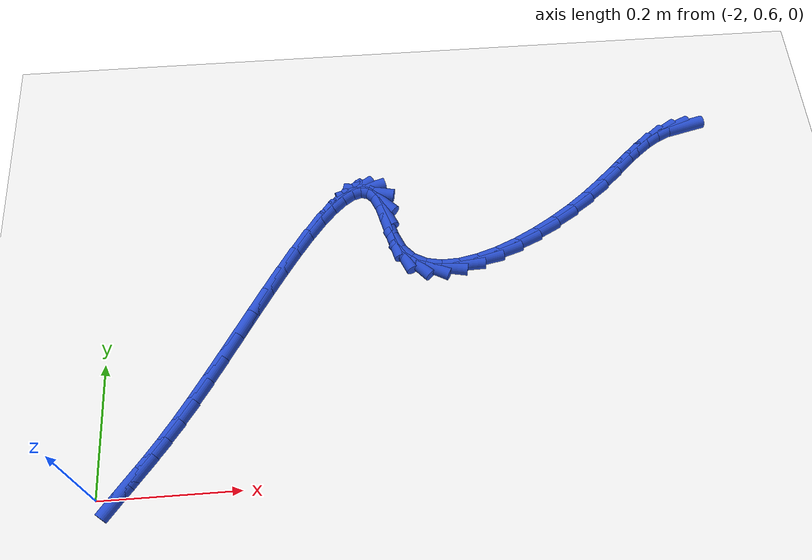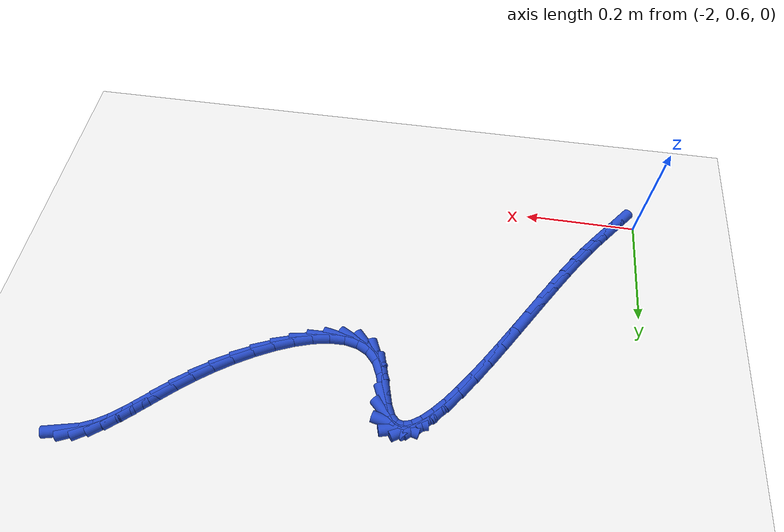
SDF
<sdf version="1.6">
 <world name="default">
  <model name="ground_plane">
   <static>1</static>
   <link name="link">
    <collision name="collision">
     <geometry><plane><normal>0 0 1</normal><size>100 100</size></plane></geometry>
     <surface><friction><ode><mu>100</mu><mu2>50</mu2></ode></friction></surface>
    </collision>
    <visual name="visual">
     <cast_shadows>0</cast_shadows>
     <geometry><plane><normal>0 0 1</normal><size>100 100</size></plane></geometry>
     <material>
      <script><uri>file://media/materials/scripts/gazebo.material</uri><name>Gazebo/WhiteGlow</name></script>
     </material>
    </visual>
   </link>
  </model>
  <model name="line">
   <link name="link_62">
    <pose>-1.091655040547691 1.1519525943507345 0.01 0 1.57 0.2382042147833684</pose>
    <collision name="collision">
     <geometry><cylinder><radius>0.01</radius><length>0.08</length></cylinder></geometry>
    </collision>
    <visual name="visual">
     <material>
      <script><name>Gazebo/Blue</name><uri>file://media/materials/scripts/gazebo.material</uri></script>
     </material>
     <geometry><cylinder><radius>0.01</radius><length>0.08</length></cylinder></geometry>
    </visual>
   </link>
   <link name="link_63">
    <pose>-1.112786473026925 1.1468215822956151 0.01 0 1.57 0.42569937189154256</pose>
    <collision name="collision">
     <geometry><cylinder><radius>0.01</radius><length>0.08</length></cylinder></geometry>
    </collision>
    <visual name="visual">
     <material>
      <script><name>Gazebo/Blue</name><uri>file://media/materials/scripts/gazebo.material</uri></script>
     </material>
     <geometry><cylinder><radius>0.01</radius><length>0.08</length></cylinder></geometry>
    </visual>
   </link>
   <link name="link_64">
    <pose>-1.133051928414438 1.1376326970161832 0.01 0 1.57 0.5736222615817751</pose>
    <collision name="collision">
     <geometry><cylinder><radius>0.01</radius><length>0.08</length></cylinder></geometry>
    </collision>
    <visual name="visual">
     <material>
      <script><name>Gazebo/Blue</name><uri>file://media/materials/scripts/gazebo.material</uri></script>
     </material>
     <geometry><cylinder><radius>0.01</radius><length>0.08</length></cylinder></geometry>
    </visual>
   </link>
   <link name="link_65">
    <pose>-1.152851858330945 1.1248401424573473 0.01 0 1.57 0.67112102603823</pose>
    <collision name="collision">
     <geometry><cylinder><radius>0.01</radius><length>0.08</length></cylinder></geometry>
    </collision>
    <visual name="visual">
     <material>
      <script><name>Gazebo/Blue</name><uri>file://media/materials/scripts/gazebo.material</uri></script>
     </material>
     <geometry><cylinder><radius>0.01</radius><length>0.08</length></cylinder></geometry>
    </visual>
   </link>
   <link name="link_66">
    <pose>-1.172694410885196 1.10908355931243 0.01 0 1.57 0.7253688649471478</pose>
    <collision name="collision">
     <geometry><cylinder><radius>0.01</radius><length>0.08</length></cylinder></geometry>
    </collision>
    <visual name="visual">
     <material>
      <script><name>Gazebo/Blue</name><uri>file://media/materials/scripts/gazebo.material</uri></script>
     </material>
     <geometry><cylinder><radius>0.01</radius><length>0.08</length></cylinder></geometry>
    </visual>
   </link>
   <link name="link_67">
    <pose>-1.1930877381090412 1.0910025950297237 0.01 0 1.57 0.7445029814929888</pose>
    <collision name="collision">
     <geometry><cylinder><radius>0.01</radius><length>0.08</length></cylinder></geometry>
    </collision>
    <visual name="visual">
     <material>
      <script><name>Gazebo/Blue</name><uri>file://media/materials/scripts/gazebo.material</uri></script>
     </material>
     <geometry><cylinder><radius>0.01</radius><length>0.08</length></cylinder></geometry>
    </visual>
   </link>
   <link name="link_68">
    <pose>-1.2145399920343296 1.0712368970575228 0.01 0 1.57 0.7350519117442823</pose>
    <collision name="collision">
     <geometry><cylinder><radius>0.01</radius><length>0.08</length></cylinder></geometry>
    </collision>
    <visual name="visual">
     <material>
      <script><name>Gazebo/Blue</name><uri>file://media/materials/scripts/gazebo.material</uri></script>
     </material>
     <geometry><cylinder><radius>0.01</radius><length>0.08</length></cylinder></geometry>
    </visual>
   </link>
   <link name="link_69">
    <pose>-1.2375593246929113 1.0504261128441206 0.01 0 1.57 0.7018471827969643</pose>
    <collision name="collision">
     <geometry><cylinder><radius>0.01</radius><length>0.08</length></cylinder></geometry>
    </collision>
    <visual name="visual">
     <material>
      <script><name>Gazebo/Blue</name><uri>file://media/materials/scripts/gazebo.material</uri></script>
     </material>
     <geometry><cylinder><radius>0.01</radius><length>0.08</length></cylinder></geometry>
    </visual>
   </link>
   <link name="link_70">
    <pose>-1.2626538881166365 1.0292098898378104 0.01 0 1.57 0.6507447884981931</pose>
    <collision name="collision">
     <geometry><cylinder><radius>0.01</radius><length>0.08</length></cylinder></geometry>
    </collision>
    <visual name="visual">
     <material>
      <script><name>Gazebo/Blue</name><uri>file://media/materials/scripts/gazebo.material</uri></script>
     </material>
     <geometry><cylinder><radius>0.01</radius><length>0.08</length></cylinder></geometry>
    </visual>
   </link>
   <link name="link_71">
    <pose>-1.2902090221353073 1.0082299543242181 0.01 0 1.57 0.5960978263858033</pose>
    <collision name="collision">
     <geometry><cylinder><radius>0.01</radius><length>0.08</length></cylinder></geometry>
    </collision>
    <visual name="visual">
     <material>
      <script><name>Gazebo/Blue</name><uri>file://media/materials/scripts/gazebo.material</uri></script>
     </material>
     <geometry><cylinder><radius>0.01</radius><length>0.08</length></cylinder></geometry>
    </visual>
   </link>
   <link name="link_72">
    <pose>-1.3198196460807194 0.9881414120057719 0.01 0 1.57 0.5396582795383098</pose>
    <collision name="collision">
     <geometry><cylinder><radius>0.01</radius><length>0.08</length></cylinder></geometry>
    </collision>
    <visual name="visual">
     <material>
      <script><name>Gazebo/Blue</name><uri>file://media/materials/scripts/gazebo.material</uri></script>
     </material>
     <geometry><cylinder><radius>0.01</radius><length>0.08</length></cylinder></geometry>
    </visual>
   </link>
   <link name="link_73">
    <pose>-1.3507675933902694 0.9696046681775674 0.01 0 1.57 0.4772733635991667</pose>
    <collision name="collision">
     <geometry><cylinder><radius>0.01</radius><length>0.08</length></cylinder></geometry>
    </collision>
    <visual name="visual">
     <material>
      <script><name>Gazebo/Blue</name><uri>file://media/materials/scripts/gazebo.material</uri></script>
     </material>
     <geometry><cylinder><radius>0.01</radius><length>0.08</length></cylinder></geometry>
    </visual>
   </link>
   <link name="link_74">
    <pose>-1.382333916084575 0.9532801413617124 0.01 0 1.57 0.40399387006309345</pose>
    <collision name="collision">
     <geometry><cylinder><radius>0.01</radius><length>0.08</length></cylinder></geometry>
    </collision>
    <visual name="visual">
     <material>
      <script><name>Gazebo/Blue</name><uri>file://media/materials/scripts/gazebo.material</uri></script>
     </material>
     <geometry><cylinder><radius>0.01</radius><length>0.08</length></cylinder></geometry>
    </visual>
   </link>
   <link name="link_75">
    <pose>-1.4137996661842538 0.9398282500803137 0.01 0 1.57 0.31301585151605144</pose>
    <collision name="collision">
     <geometry><cylinder><radius>0.01</radius><length>0.08</length></cylinder></geometry>
    </collision>
    <visual name="visual">
     <material>
      <script><name>Gazebo/Blue</name><uri>file://media/materials/scripts/gazebo.material</uri></script>
     </material>
     <geometry><cylinder><radius>0.01</radius><length>0.08</length></cylinder></geometry>
    </visual>
   </link>
   <link name="link_76">
    <pose>-1.444445895709923 0.9299094128554787 0.01 0 1.57 0.19421611476089998</pose>
    <collision name="collision">
     <geometry><cylinder><radius>0.01</radius><length>0.08</length></cylinder></geometry>
    </collision>
    <visual name="visual">
     <material>
      <script><name>Gazebo/Blue</name><uri>file://media/materials/scripts/gazebo.material</uri></script>
     </material>
     <geometry><cylinder><radius>0.01</radius><length>0.08</length></cylinder></geometry>
    </visual>
   </link>
   <link name="link_77">
    <pose>-1.4735536566822014 0.924184048209315 0.01 0 1.57 0.03244530908625887</pose>
    <collision name="collision">
     <geometry><cylinder><radius>0.01</radius><length>0.08</length></cylinder></geometry>
    </collision>
    <visual name="visual">
     <material>
      <script><name>Gazebo/Blue</name><uri>file://media/materials/scripts/gazebo.material</uri></script>
     </material>
     <geometry><cylinder><radius>0.01</radius><length>0.08</length></cylinder></geometry>
    </visual>
   </link>
   <link name="link_78">
    <pose>-1.5004040011217061 0.9233125746639298 0.01 0 1.57 -0.1920751924655233</pose>
    <collision name="collision">
     <geometry><cylinder><radius>0.01</radius><length>0.08</length></cylinder></geometry>
    </collision>
    <visual name="visual">
     <material>
      <script><name>Gazebo/Blue</name><uri>file://media/materials/scripts/gazebo.material</uri></script>
     </material>
     <geometry><cylinder><radius>0.01</radius><length>0.08</length></cylinder></geometry>
    </visual>
   </link>
   <link name="link_79">
    <pose>-1.5242779810490537 0.9279554107414298 0.01 0 1.57 -0.4921003853158791</pose>
    <collision name="collision">
     <geometry><cylinder><radius>0.01</radius><length>0.08</length></cylinder></geometry>
    </collision>
    <visual name="visual">
     <material>
      <script><name>Gazebo/Blue</name><uri>file://media/materials/scripts/gazebo.material</uri></script>
     </material>
     <geometry><cylinder><radius>0.01</radius><length>0.08</length></cylinder></geometry>
    </visual>
   </link>
   <link name="link_80">
    <pose>-1.5444566484848639 0.9387729749639231 0.01 0 1.57 -0.8418452201998652</pose>
    <collision name="collision">
     <geometry><cylinder><radius>0.01</radius><length>0.08</length></cylinder></geometry>
    </collision>
    <visual name="visual">
     <material>
      <script><name>Gazebo/Blue</name><uri>file://media/materials/scripts/gazebo.material</uri></script>
     </material>
     <geometry><cylinder><radius>0.01</radius><length>0.08</length></cylinder></geometry>
    </visual>
   </link>
   <link name="link_81">
    <pose>-1.560221055449753 0.9564256858535163 0.01 0 1.57 -1.1553070775471048</pose>
    <collision name="collision">
     <geometry><cylinder><radius>0.01</radius><length>0.08</length></cylinder></geometry>
    </collision>
    <visual name="visual">
     <material>
      <script><name>Gazebo/Blue</name><uri>file://media/materials/scripts/gazebo.material</uri></script>
     </material>
     <geometry><cylinder><radius>0.01</radius><length>0.08</length></cylinder></geometry>
    </visual>
   </link>
   <link name="link_82">
    <pose>-1.5711044463587647 0.9810948954071318 0.01 0 1.57 -1.3072496696569134</pose>
    <collision name="collision">
     <geometry><cylinder><radius>0.01</radius><length>0.08</length></cylinder></geometry>
    </collision>
    <visual name="visual">
     <material>
      <script><name>Gazebo/Blue</name><uri>file://media/materials/scripts/gazebo.material</uri></script>
     </material>
     <geometry><cylinder><radius>0.01</radius><length>0.08</length></cylinder></geometry>
    </visual>
   </link>
   <link name="link_83">
    <pose>-1.5786650068933479 1.0091153623157632 0.01 0 1.57 -1.3146788064199935</pose>
    <collision name="collision">
     <geometry><cylinder><radius>0.01</radius><length>0.08</length></cylinder></geometry>
    </collision>
    <visual name="visual">
     <material>
      <script><name>Gazebo/Blue</name><uri>file://media/materials/scripts/gazebo.material</uri></script>
     </material>
     <geometry><cylinder><radius>0.01</radius><length>0.08</length></cylinder></geometry>
    </visual>
   </link>
   <link name="link_84">
    <pose>-1.5854356089643353 1.0349703241485189 0.01 0 1.57 -1.152651219568261</pose>
    <collision name="collision">
     <geometry><cylinder><radius>0.01</radius><length>0.08</length></cylinder></geometry>
    </collision>
    <visual name="visual">
     <material>
      <script><name>Gazebo/Blue</name><uri>file://media/materials/scripts/gazebo.material</uri></script>
     </material>
     <geometry><cylinder><radius>0.01</radius><length>0.08</length></cylinder></geometry>
    </visual>
   </link>
   <link name="link_85">
    <pose>-1.5937321485998968 1.053641523746734 0.01 0 1.57 -0.7826806792465566</pose>
    <collision name="collision">
     <geometry><cylinder><radius>0.01</radius><length>0.08</length></cylinder></geometry>
    </collision>
    <visual name="visual">
     <material>
      <script><name>Gazebo/Blue</name><uri>file://media/materials/scripts/gazebo.material</uri></script>
     </material>
     <geometry><cylinder><radius>0.01</radius><length>0.08</length></cylinder></geometry>
    </visual>
   </link>
   <link name="link_86">
    <pose>-1.6041626796745418 1.0640155187124298 0.01 0 1.57 -0.2198231574765068</pose>
    <collision name="collision">
     <geometry><cylinder><radius>0.01</radius><length>0.08</length></cylinder></geometry>
    </collision>
    <visual name="visual">
     <material>
      <script><name>Gazebo/Blue</name><uri>file://media/materials/scripts/gazebo.material</uri></script>
     </material>
     <geometry><cylinder><radius>0.01</radius><length>0.08</length></cylinder></geometry>
    </visual>
   </link>
   <link name="link_87">
    <pose>-1.616546419726501 1.0667824641071961 0.01 0 1.57 0.2846137360050017</pose>
    <collision name="collision">
     <geometry><cylinder><radius>0.01</radius><length>0.08</length></cylinder></geometry>
    </collision>
    <visual name="visual">
     <material>
      <script><name>Gazebo/Blue</name><uri>file://media/materials/scripts/gazebo.material</uri></script>
     </material>
     <geometry><cylinder><radius>0.01</radius><length>0.08</length></cylinder></geometry>
    </visual>
   </link>
   <link name="link_88">
    <pose>-1.630698336031319 1.0626422328043257 0.01 0 1.57 0.5817064759593974</pose>
    <collision name="collision">
     <geometry><cylinder><radius>0.01</radius><length>0.08</length></cylinder></geometry>
    </collision>
    <visual name="visual">
     <material>
      <script><name>Gazebo/Blue</name><uri>file://media/materials/scripts/gazebo.material</uri></script>
     </material>
     <geometry><cylinder><radius>0.01</radius><length>0.08</length></cylinder></geometry>
    </visual>
   </link>
   <link name="link_89">
    <pose>-1.6464333958645387 1.052294697677112 0.01 0 1.57 0.7466701363084801</pose>
    <collision name="collision">
     <geometry><cylinder><radius>0.01</radius><length>0.08</length></cylinder></geometry>
    </collision>
    <visual name="visual">
     <material>
      <script><name>Gazebo/Blue</name><uri>file://media/materials/scripts/gazebo.material</uri></script>
     </material>
     <geometry><cylinder><radius>0.01</radius><length>0.08</length></cylinder></geometry>
    </visual>
   </link>
   <link name="link_90">
    <pose>-1.6635665665017052 1.0364397315988476 0.01 0 1.57 0.8447068466392204</pose>
    <collision name="collision">
     <geometry><cylinder><radius>0.01</radius><length>0.08</length></cylinder></geometry>
    </collision>
    <visual name="visual">
     <material>
      <script><name>Gazebo/Blue</name><uri>file://media/materials/scripts/gazebo.material</uri></script>
     </material>
     <geometry><cylinder><radius>0.01</radius><length>0.08</length></cylinder></geometry>
    </visual>
   </link>
   <link name="link_91">
    <pose>-1.681912815218364 1.015777207442826 0.01 0 1.57 0.9070278102720732</pose>
    <collision name="collision">
     <geometry><cylinder><radius>0.01</radius><length>0.08</length></cylinder></geometry>
    </collision>
    <visual name="visual">
     <material>
      <script><name>Gazebo/Blue</name><uri>file://media/materials/scripts/gazebo.material</uri></script>
     </material>
     <geometry><cylinder><radius>0.01</radius><length>0.08</length></cylinder></geometry>
    </visual>
   </link>
   <link name="link_92">
    <pose>-1.701287109290058 0.9910069980823405 0.01 0 1.57 0.9484316266652317</pose>
    <collision name="collision">
     <geometry><cylinder><radius>0.01</radius><length>0.08</length></cylinder></geometry>
    </collision>
    <visual name="visual">
     <material>
      <script><name>Gazebo/Blue</name><uri>file://media/materials/scripts/gazebo.material</uri></script>
     </material>
     <geometry><cylinder><radius>0.01</radius><length>0.08</length></cylinder></geometry>
    </visual>
   </link>
   <link name="link_93">
    <pose>-1.7215044159923327 0.9628289763906842 0.01 0 1.57 0.9764405066565025</pose>
    <collision name="collision">
     <geometry><cylinder><radius>0.01</radius><length>0.08</length></cylinder></geometry>
    </collision>
    <visual name="visual">
     <material>
      <script><name>Gazebo/Blue</name><uri>file://media/materials/scripts/gazebo.material</uri></script>
     </material>
     <geometry><cylinder><radius>0.01</radius><length>0.08</length></cylinder></geometry>
    </visual>
   </link>
   <link name="link_94">
    <pose>-1.742379702600732 0.9319430152411493 0.01 0 1.57 0.9951242057274474</pose>
    <collision name="collision">
     <geometry><cylinder><radius>0.01</radius><length>0.08</length></cylinder></geometry>
    </collision>
    <visual name="visual">
     <material>
      <script><name>Gazebo/Blue</name><uri>file://media/materials/scripts/gazebo.material</uri></script>
     </material>
     <geometry><cylinder><radius>0.01</radius><length>0.08</length></cylinder></geometry>
    </visual>
   </link>
   <link name="link_95">
    <pose>-1.7637279363908003 0.8990489875070302 0.01 0 1.57 1.0067541976084156</pose>
    <collision name="collision">
     <geometry><cylinder><radius>0.01</radius><length>0.08</length></cylinder></geometry>
    </collision>
    <visual name="visual">
     <material>
      <script><name>Gazebo/Blue</name><uri>file://media/materials/scripts/gazebo.material</uri></script>
     </material>
     <geometry><cylinder><radius>0.01</radius><length>0.08</length></cylinder></geometry>
    </visual>
   </link>
   <link name="link_96">
    <pose>-1.785364084638082 0.8648467660616197 0.01 0 1.57 1.0125598188180935</pose>
    <collision name="collision">
     <geometry><cylinder><radius>0.01</radius><length>0.08</length></cylinder></geometry>
    </collision>
    <visual name="visual">
     <material>
      <script><name>Gazebo/Blue</name><uri>file://media/materials/scripts/gazebo.material</uri></script>
     </material>
     <geometry><cylinder><radius>0.01</radius><length>0.08</length></cylinder></geometry>
    </visual>
   </link>
   <link name="link_97">
    <pose>-1.8071031146181216 0.8300362237782107 0.01 0 1.57 1.0130775484140084</pose>
    <collision name="collision">
     <geometry><cylinder><radius>0.01</radius><length>0.08</length></cylinder></geometry>
    </collision>
    <visual name="visual">
     <material>
      <script><name>Gazebo/Blue</name><uri>file://media/materials/scripts/gazebo.material</uri></script>
     </material>
     <geometry><cylinder><radius>0.01</radius><length>0.08</length></cylinder></geometry>
    </visual>
   </link>
   <link name="link_98">
    <pose>-1.8287599936064631 0.7953172335300962 0.01 0 1.57 1.008286204964595</pose>
    <collision name="collision">
     <geometry><cylinder><radius>0.01</radius><length>0.08</length></cylinder></geometry>
    </collision>
    <visual name="visual">
     <material>
      <script><name>Gazebo/Blue</name><uri>file://media/materials/scripts/gazebo.material</uri></script>
     </material>
     <geometry><cylinder><radius>0.01</radius><length>0.08</length></cylinder></geometry>
    </visual>
   </link>
   <link name="link_99">
    <pose>-1.8501496888786517 0.7613896681905689 0.01 0 1.57 0.9975939283470145</pose>
    <collision name="collision">
     <geometry><cylinder><radius>0.01</radius><length>0.08</length></cylinder></geometry>
    </collision>
    <visual name="visual">
     <material>
      <script><name>Gazebo/Blue</name><uri>file://media/materials/scripts/gazebo.material</uri></script>
     </material>
     <geometry><cylinder><radius>0.01</radius><length>0.08</length></cylinder></geometry>
    </visual>
   </link>
   <link name="link_100">
    <pose>-1.8710871677102314 0.728953400632923 0.01 0 1.57 0.9796681930107063</pose>
    <collision name="collision">
     <geometry><cylinder><radius>0.01</radius><length>0.08</length></cylinder></geometry>
    </collision>
    <visual name="visual">
     <material>
      <script><name>Gazebo/Blue</name><uri>file://media/materials/scripts/gazebo.material</uri></script>
     </material>
     <geometry><cylinder><radius>0.01</radius><length>0.08</length></cylinder></geometry>
    </visual>
   </link>
   <link name="link_101">
    <pose>-1.8913873973767468 0.6987083037304513 0.01 0 1.57 0.9526118303079983</pose>
    <collision name="collision">
     <geometry><cylinder><radius>0.01</radius><length>0.08</length></cylinder></geometry>
    </collision>
    <visual name="visual">
     <material>
      <script><name>Gazebo/Blue</name><uri>file://media/materials/scripts/gazebo.material</uri></script>
     </material>
     <geometry><cylinder><radius>0.01</radius><length>0.08</length></cylinder></geometry>
    </visual>
   </link>
   <link name="link_102">
    <pose>-1.910872111235378 0.671310261090779 0.01 0 1.57 0.9236446145849297</pose>
    <collision name="collision">
     <geometry><cylinder><radius>0.01</radius><length>0.08</length></cylinder></geometry>
    </collision>
    <visual name="visual">
     <material>
      <script><name>Gazebo/Blue</name><uri>file://media/materials/scripts/gazebo.material</uri></script>
     </material>
     <geometry><cylinder><radius>0.01</radius><length>0.08</length></cylinder></geometry>
    </visual>
   </link>
   <link name="link_103">
    <pose>-1.9294736736988207 0.6466958952847861 0.01 0 1.57 0.9026971264425291</pose>
    <collision name="collision">
     <geometry><cylinder><radius>0.01</radius><length>0.08</length></cylinder></geometry>
    </collision>
    <visual name="visual">
     <material>
      <script><name>Gazebo/Blue</name><uri>file://media/materials/scripts/gazebo.material</uri></script>
     </material>
     <geometry><cylinder><radius>0.01</radius><length>0.08</length></cylinder></geometry>
    </visual>
   </link>
   <link name="link_104">
    <pose>-1.9472146868795477 0.6242151540008615 0.01 0 1.57 0.8933261798510019</pose>
    <collision name="collision">
     <geometry><cylinder><radius>0.01</radius><length>0.08</length></cylinder></geometry>
    </collision>
    <visual name="visual">
     <material>
      <script><name>Gazebo/Blue</name><uri>file://media/materials/scripts/gazebo.material</uri></script>
     </material>
     <geometry><cylinder><radius>0.01</radius><length>0.08</length></cylinder></geometry>
    </visual>
   </link>
   <link name="link_105">
    <pose>-1.964120387146555 0.6032008584698235 0.01 0 1.57 0.8983641018037537</pose>
    <collision name="collision">
     <geometry><cylinder><radius>0.01</radius><length>0.08</length></cylinder></geometry>
    </collision>
    <visual name="visual">
     <material>
      <script><name>Gazebo/Blue</name><uri>file://media/materials/scripts/gazebo.material</uri></script>
     </material>
     <geometry><cylinder><radius>0.01</radius><length>0.08</length></cylinder></geometry>
    </visual>
   </link>
  </model>
 </world>
</sdf>
